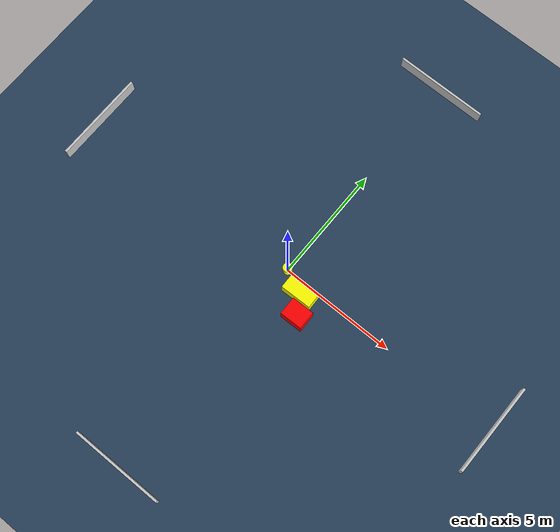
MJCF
<?xml version="1.0" ?>
<mujoco model="generated_environment">
  <option timestep="0.01" integrator="RK4" cone="elliptic"/>
  <default>
    <geom density="1"/>
  </default>
  <asset>
    <texture builtin="gradient" height="3072" name="skybox" rgb1="0.3 0.5 0.7" rgb2="0 0 0" type="skybox" width="512"/>
    <texture builtin="checker" height="300" name="groundplane" rgb1="0.2 0.3 0.4" rgb2="0.1 0.2 0.3" type="2d" width="300"/>
    <material name="groundplane" reflectance="0.2" texrepeat="5 5" texture="groundplane"/>
  </asset>
  <worldbody>
    <light dir="0 0 -1" directional="true" pos="0 0 1.5"/>
    <geom condim="3" friction="0.5 0.005 0.001" material="groundplane" name="floor" pos="0 0 0" size="0 0 0.05" type="plane"/>
    <body name="walls">
      <geom name="wall_1" condim="4" pos="-10.0 0.0 0.3" rgba="0.800000011920929 0.800000011920929 0.800000011920929 1.0" size="0.05 2.0 0.3" type="box"/>
      <geom name="wall_2" condim="4" pos="10.0 0.0 0.3" rgba="0.800000011920929 0.800000011920929 0.800000011920929 1.0" size="0.05 2.0 0.3" type="box"/>
      <geom name="wall_3" condim="4" pos="0.0 -10.0 0.3" rgba="0.800000011920929 0.800000011920929 0.800000011920929 1.0" size="2.0 0.05 0.3" type="box"/>
      <geom name="wall_4" condim="4" pos="0.0 10.0 0.3" rgba="0.800000011920929 0.800000011920929 0.800000011920929 1.0" size="2.0 0.05 0.3" type="box"/>
    </body>
    <body name="robot">
      <joint name="joint_x" type="slide" pos="0 0 0" axis="1 0 0"/>
      <joint name="joint_y" type="slide" pos="0 0 0" axis="0 1 0"/>
      <geom name="robot" type="cylinder" pos="0.0 0.0 0.2" size="0.2 0.2 0.0" mass="5.0" friction="1.0 0.005 0.0001" condim="4" rgba="1.0 1.0 0.0 1.0"/>
    </body>
    <body name="obstacle_1_movable">
      <geom name="obstacle_1_movable" condim="4" pos="1.0127844511718513 -0.4516920512539963 0.3" euler="0 0 181.37655063389667" friction="0.0 0.005 0.001" rgba="1.0 1.0 0.0 1.0" size="0.6688278520855125 0.32119346006990174 0.3" type="box" mass="0.1"/>
      <joint type="free"/>
    </body>
    <body name="obstacle_2_static">
      <geom name="obstacle_2_static" condim="4" pos="1.473891673995758 -1.2288012256968615 0.3" euler="0 0 271.01140791982823" friction="0.0 0.005 0.001" rgba="1.0 0.0 0.0 1.0" size="0.3917444975215835 0.4884392055950539 0.3" type="box"/>
    </body>
  </worldbody>
  <actuator>
    <motor name="actuator_x" joint="joint_x" gear="1" ctrlrange="-1 1"/>
    <motor name="actuator_y" joint="joint_y" gear="1" ctrlrange="-1 1"/>
  </actuator>
</mujoco>
